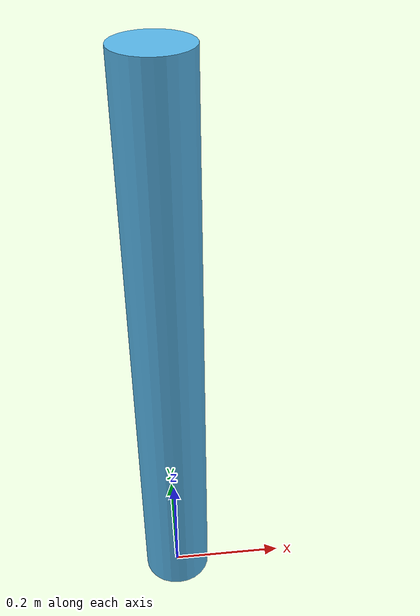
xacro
<?xml version="1.0"?>
        <robot xmlns:xacro="http://wiki.ros.org/xacro"  name="arm">

        <!-- the inertial matrix of a solid cylinder-->
        <xacro:macro name="solid_cylinder_inertia" params="radius length mass *origin">
        	<inertial>
		        <mass value="${mass}" />
       				 <xacro:insert_block name="origin" />
				         <inertia ixx="${0.0833333 * mass * (3 * radius * radius + length * length)}" ixy="0.0" ixz="0.0"
        					  iyy="${0.0833333 * mass * (3 * radius * radius + length * length)}" iyz="0.0"
					          izz="${0.5 * mass * radius * radius}" />
        	</inertial>
        </xacro:macro>

        <xacro:property name="prefix" value="roni_"/>
        <xacro:property name="base_length" value="3.25"/>
        <xacro:property name="base_radius" value="0.060" />
        <xacro:property name="link0_radius" value="0.060" />

            <!-- Inertia parameters -->
        <xacro:property name="base_mass" value="1.0" />
        <xacro:property name="link0_mass" value="40.7" />
	<xacro:property name="link0_length" value="1" />

        <xacro:property name="link1_mass" value="8.4904" />
        <xacro:property name="link2_mass" value="7.3149" />
        <xacro:property name="link3_mass" value="7.314899999999998" />
        <xacro:property name="link4_mass" value="7.3149000000000015" />
        <xacro:property name="link5_mass" value="7.3149000000000015" />
        <xacro:property name="link6_mass" value="7.314899999999994" />

        <!-- Radius for each links- UR5 parameters  -->
        <xacro:property name="link1_radius" value="0.06" />
        <xacro:property name="link2_radius" value="0.054" />
        <xacro:property name="link3_radius" value="0.06" />
        <xacro:property name="link4_radius" value="0.04" />
        <xacro:property name="link5_radius" value="0.045" />
        <xacro:property name="link6_radius" value="0.045" />  <!--  joint 0	-->

	<!-- used for fixinig robot to Gazebo 'base_link -->
        <link name="world"/>

		<joint name="fixed" type="fixed">
		   <parent link="world"/>
		   <child link="${prefix}link0"/>
		</joint>

         <!-- link 0	-->
        <link name="${prefix}link0">
        	<visual>
		        <origin xyz="0 0 ${link0_length / 2}" rpy="0 0 0" />
			    <geometry>
		    		<cylinder radius="${link0_radius}" length="${link0_length}"/>
			    </geometry>
		    </visual>

		    <collision>
			    <origin xyz="0 0 ${link0_length / 2 }" rpy="0 0 0" />
			    <geometry>
				    <cylinder radius="${link0_radius}" length="${link0_length}"/>
			    </geometry>
		    </collision>

		    <xacro:solid_cylinder_inertia radius="${link0_radius}" length="${link0_length}" mass="${link0_mass}">
			    <origin xyz="0.0 0.0 ${link0_length / 2 }" rpy="0 0 0" />
		    </xacro:solid_cylinder_inertia>
        </link>

    </robot>
